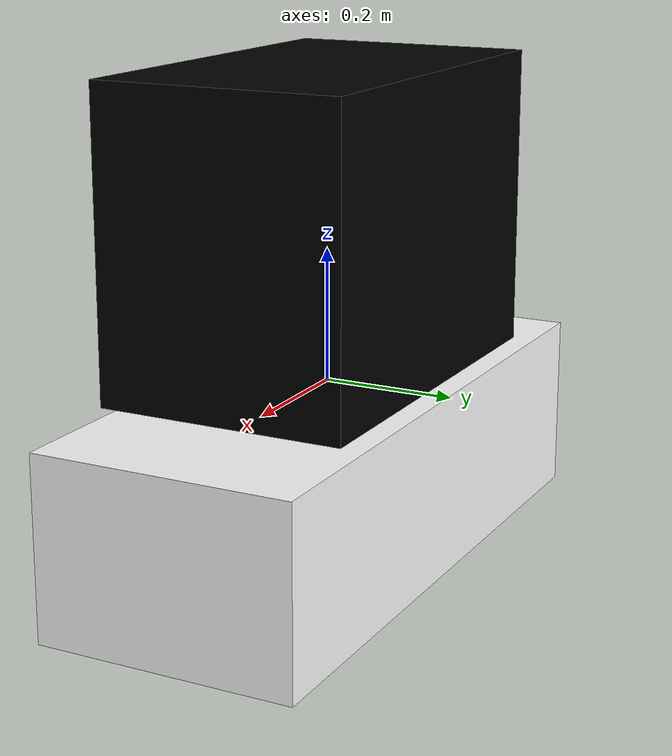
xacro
<?xml version="1.0"?>
<robot xmlns:xacro="http://www.ros.org/wiki/xacro">

    <xacro:include filename="inertial_macros.xacro"/>

    <xacro:property name="chassis_length" value="0.94"/>
    <xacro:property name="chassis_width" value="0.39"/>
    <xacro:property name="chassis_height" value="0.273"/>
    <xacro:property name="chassis_mass" value="140.0"/>

    <xacro:property name="front_chassis2rack" value="0.15"/>

    <xacro:property name="rack_length" value="0.6"/>
    <xacro:property name="rack_width" value="0.37"/>
    <xacro:property name="rack_height" value="0.45"/>
    <xacro:property name="rack_mass" value="0.0"/>

    <!-- Lateral offset: center of track from robot centerline -->
    <xacro:property name="track_offset_y" value="${chassis_width/2 + track_width/2}"/>
    <!-- Z: bottom of chassis minus half track height = track center sits at ground level -->
    <xacro:property name="track_offset_z" value="${-chassis_height/2 - track_height/2}"/>

    <!-- Rack -->
    <xacro:property name="rack_mass" value="0.1"/>

    <material name="white">  <color rgba="1 1 1 1"/>         </material>
    <material name="orange"> <color rgba="1 0.3 0.1 1"/>     </material>
    <material name="blue">   <color rgba="0.2 0.2 1 1"/>     </material>
    <material name="black">  <color rgba="0 0 0 1"/>         </material>
    <material name="black_t"><color rgba="0 0 0 0.9"/>       </material>
    <material name="red">    <color rgba="1 0 0 1"/>         </material>
    <material name="gray">    <color rgba="0.5 0.5 0.5 1"/>         </material>

    <!-- ═══════════════════════════════════════════
         BASE LINK
    ═══════════════════════════════════════════ -->
    <link name="base_link"/>

    <joint name="base_footprint_joint" type="fixed">
        <parent link="base_link"/>
        <child link="base_footprint"/>
        <origin xyz="0 0 ${-chassis_height - 0.1}" rpy="0 0 0"/>
    </joint>
    <link name="base_footprint"/>

    <!-- ═══════════════════════════════════════════
         CHASSIS
    ═══════════════════════════════════════════ -->
    <joint name="chassis_joint" type="fixed">
        <parent link="base_link"/>
        <child link="chassis"/>
        <origin xyz="${-chassis_length/2} 0 0"/>
    </joint>

    <link name="chassis">
        <visual>
            <origin xyz="${chassis_length/2} 0 ${-chassis_height/2}"/>
            <geometry>
                <box size="${chassis_length} ${chassis_width} ${chassis_height}"/>
            </geometry>
            <material name="white"/>
        </visual>
        <collision>
            <origin xyz="${chassis_length/2} 0 ${-chassis_height/2}"/>
            <geometry>
                <box size="${chassis_length} ${chassis_width} ${chassis_height}"/>
            </geometry>
        </collision>
        <xacro:inertial_box mass="${chassis_mass}"
                            x="${chassis_length}" y="${chassis_width}" z="${chassis_height}">
            <origin xyz="${chassis_length/2} 0 ${-chassis_height/2}" rpy="0 0 0"/>
        </xacro:inertial_box>
    </link>
    <gazebo reference="chassis">
        <material>Gazebo/White</material>
    </gazebo>

    <!-- ═══════════════════════════════════════════
         RACK
    ═══════════════════════════════════════════ -->
    <joint name="base2rack" type="fixed">
        <parent link="base_link"/>
        <child link="rack"/>
        <origin xyz="${-rack_length/2 - front_chassis2rack + chassis_length/2} 0 ${rack_height/2 + 0.02}"/>
    </joint>

    <link name="rack">
        <visual>
            <origin xyz="0 0 0"/>
            <geometry>
                <box size="${rack_length} ${rack_width} ${rack_height}"/>
            </geometry>
            <material name="black_t"/>
        </visual>
        <collision>
            <origin xyz="0 0 0"/>
            <geometry>
                <box size="${rack_length} ${rack_width} ${rack_height}"/>
            </geometry>
        </collision>
        <xacro:inertial_box mass="${rack_mass}"
                            x="${rack_length}" y="${rack_width}" z="${rack_height}">
            <origin xyz="0 0 0" rpy="0 0 0"/>
        </xacro:inertial_box>
    </link>

</robot>
